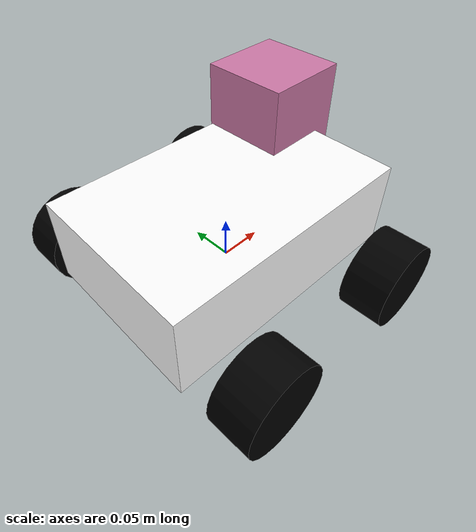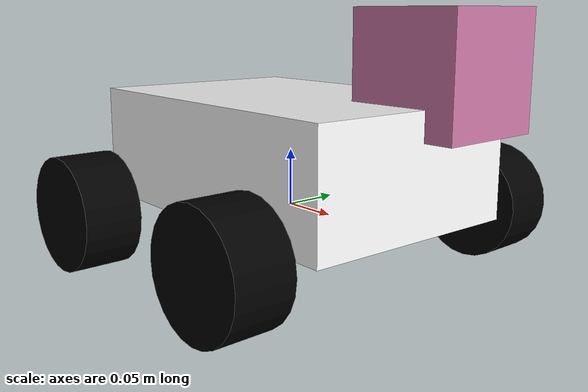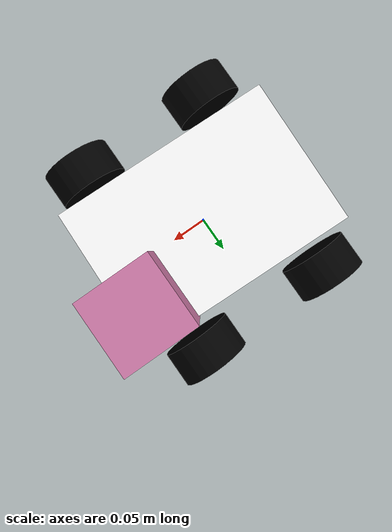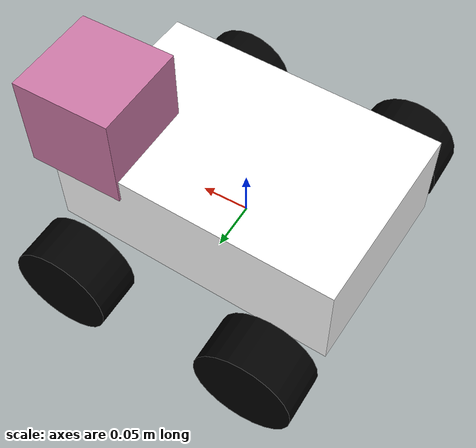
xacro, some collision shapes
<?xml version="1.0"?>
<robot xmlns:xacro="http://www.ros.org/wiki/xacro"
 	xmlns:sensor="http://playerstage.sourceforge.net/gazebo/xmlschema/#sensor"
    	xmlns:controller="http://playerstage.sourceforge.net/gazebo/xmlschema/#controller"
    	xmlns:interface="http://playerstage.sourceforge.net/gazebo/xmlschema/#interface"
	name="robot1_xacro">

	<xacro:property name="length_wheel" value="0.05" />
	<xacro:property name="radius_wheel" value="0.05" />
	<xacro:property name="camera_link" value="0.05" />
	<xacro:macro name="default_inertial" params="mass">
               <inertial>
                       <mass value="${mass}" />
                       <inertia ixx="1.0" ixy="0.0" ixz="0.0"
                                iyy="1.0" iyz="0.0"
                                izz="1.0" />
               </inertial>
	</xacro:macro>

	<link name="base_footprint">
   		<visual>
			<geometry>
      				<box size="0.001 0.001 0.001"/>
     			</geometry>
			<origin rpy="0 0 0" xyz="0 0 0"/>
   		</visual>
		<xacro:default_inertial mass="0.0001"/>
 	</link>

	<gazebo reference="base_footprint">
		<material>Gazebo/Green</material>
		<turnGravityOff>false</turnGravityOff>
	</gazebo>

	<joint name="base_footprint_joint" type="fixed">
		<origin xyz="0 0 0" />
		<parent link="base_footprint" />
		<child link="base_link" />
	</joint>

	<link name="base_link">
   		<visual>
			<geometry>
      				<box size="0.2 .3 .1"/>
     			</geometry>
			<origin rpy="0 0 1.54" xyz="0 0 0.05"/>
			<material name="white">
				<color rgba="1 1 1 1"/>
			</material>
   		</visual>
		<collision>
			<geometry>
       				<box size="0.2 .3 0.1"/>
			</geometry>
		</collision>
		<xacro:default_inertial mass="10"/>
 	</link>

 	<link name="wheel_1">
   		<visual>
     			<geometry>
       				<cylinder length="${length_wheel}" radius="${radius_wheel}"/>
     			</geometry>
			<origin rpy="0 0 0" xyz="0 0 0"/>
   			<material name="black">
				<color rgba="0 0 0 1"/>
			</material>
		</visual>
		<collision>
			<geometry>
       				<cylinder length="${length_wheel}" radius="${radius_wheel}"/>
			</geometry>
		</collision>
		<xacro:default_inertial mass="1"/>
 	</link>

 	<link name="wheel_2">
   		<visual>
     			<geometry>
       				<cylinder length="${length_wheel}" radius="${radius_wheel}"/>
     			</geometry>
			<origin rpy="0 0 0" xyz="0 0 0"/>
   			<material name="black"/>
   		</visual>
		<collision>
			<geometry>
       				<cylinder length="${length_wheel}" radius="${radius_wheel}"/>
			</geometry>
		</collision>
		<xacro:default_inertial mass="1"/>

 	</link>

 	<link name="wheel_3">
   		<visual>
     			<geometry>
       				<cylinder length="${length_wheel}" radius="${radius_wheel}"/>
     			</geometry>

			<origin rpy="0 0 0" xyz="0 0 0"/>
   			<material name="black"/>
   		</visual>
		<collision>
			<geometry>
       				<cylinder length="${length_wheel}" radius="${radius_wheel}"/>
			</geometry>
		</collision>
		<xacro:default_inertial mass="1"/>
 	</link>

 	<link name="wheel_4">
   		<visual>
     			<geometry>
       				<cylinder length="${length_wheel}" radius="${radius_wheel}"/>
     			</geometry>
			<origin rpy="0 0 0" xyz="0 0 0" />
   			<material name="black"/>
   		</visual>
		<collision>
			<geometry>
       				<cylinder length="${length_wheel}" radius="${radius_wheel}"/>
			</geometry>
		</collision>
		<xacro:default_inertial mass="1"/>

 	</link>

 <joint name="base_to_wheel1" type="continuous">
   <parent link="base_link"/>
   <child link="wheel_1"/>
   <origin rpy="1.5707 0 0" xyz="0.1 0.15 0"/>
   <axis xyz="0 0 1" />
 </joint>

 <joint name="base_to_wheel2" type="continuous">
   <axis xyz="0 0 1" />
   <anchor xyz="0 0 0" />
   <limit effort="100" velocity="100" />
   <parent link="base_link"/>
   <child link="wheel_2"/>
   <origin rpy="1.5707 0 0" xyz="-0.1 0.15 0"/>
</joint>

 <joint name="base_to_wheel3" type="continuous">
   <parent link="base_link"/>
   <axis xyz="0 0 1" />
   <child link="wheel_3"/>
   <origin rpy="1.5707 0 0" xyz="0.1 -0.15 0"/>
 </joint>

 <joint name="base_to_wheel4" type="continuous">
   <parent link="base_link"/>
   <axis xyz="0 0 1" />
   <child link="wheel_4"/>
   <origin rpy="1.5707 0 0" xyz="-0.1 -0.15 0"/>
 </joint>

  <joint name="hokuyo_joint" type="fixed">
    <axis xyz="0 1 0" />
    <origin xyz="0.125 0.05 0.125" rpy="0 0 0"/>
    <parent link="base_link"/>
    <child link="hokuyo_link"/>
  </joint>

  <!-- Hokuyo Laser -->
  <link name="hokuyo_link">
    <collision>
      <origin xyz="0 0 0" rpy="0 0 0"/>
      <geometry>
	<box size="0.1 0.1 0.1"/>
      </geometry>
    </collision>

    <visual>
      <origin xyz="0 0 0" rpy="0 0 0"/>
      <geometry>
        <mesh filename="package://robot1_description/meshes/hokuyo.dae"/>
      </geometry>
    </visual>

    <inertial>
      <mass value="1e-5" />
      <origin xyz="0 0 0" rpy="0 0 0"/>
      <inertia ixx="1e-6" ixy="0" ixz="0" iyy="1e-6" iyz="0" izz="1e-6" />
    </inertial>
  </link>
  <!-- materials -->
  <gazebo reference="base_link">
    <material>Gazebo/Orange</material>
  </gazebo>

 <gazebo reference="wheel_1">
        <material>Gazebo/Black</material>
 </gazebo>

 <gazebo reference="wheel_2">
        <material>Gazebo/Black</material>
 </gazebo>

 <gazebo reference="wheel_3">
        <material>Gazebo/Black</material>
 </gazebo>

 <gazebo reference="wheel_4">
        <material>Gazebo/Black</material>
 </gazebo>

  <!-- ros_control plugin -->
  <gazebo>
    <plugin name="gazebo_ros_control" filename="libgazebo_ros_control.so">
      <robotNamespace>/robot</robotNamespace>

    </plugin>
  </gazebo>

  <!-- Link1 -->
  <gazebo reference="link1">
    <material>Gazebo/Orange</material>
  </gazebo>

  <!-- Link2 -->
  <gazebo reference="link2">
    <mu1>0.2</mu1>
    <mu2>0.2</mu2>
    <material>Gazebo/Black</material>
  </gazebo>

  <!-- Link3 -->
  <gazebo reference="link3">
    <mu1>0.2</mu1>
    <mu2>0.2</mu2>
    <material>Gazebo/Orange</material>
  </gazebo>

  <!-- hokuyo -->
  <gazebo reference="hokuyo_link">
    <sensor type="ray" name="head_hokuyo_sensor">
      <pose>0 0 0 0 0 0</pose>
      <visualize>true</visualize>
      <update_rate>40</update_rate>
      <ray>
        <scan>
          <horizontal>
            <samples>720</samples>
            <resolution>1</resolution>
            <min_angle>-1.570796</min_angle>
            <max_angle>1.570796</max_angle>
          </horizontal>
        </scan>
        <range>
          <min>0.10</min>
          <max>30.0</max>
          <resolution>0.01</resolution>
        </range>
        <noise>
          <type>gaussian</type>
          <mean>0.0</mean>
          <stddev>0.01</stddev>
        </noise>
      </ray>
      <plugin name="gazebo_ros_head_hokuyo_controller" filename="libgazebo_ros_laser.so">
        <topicName>/robot/laser/scan</topicName>
        <frameName>hokuyo_link</frameName>
      </plugin>
    </sensor>
  </gazebo>

</robot>
